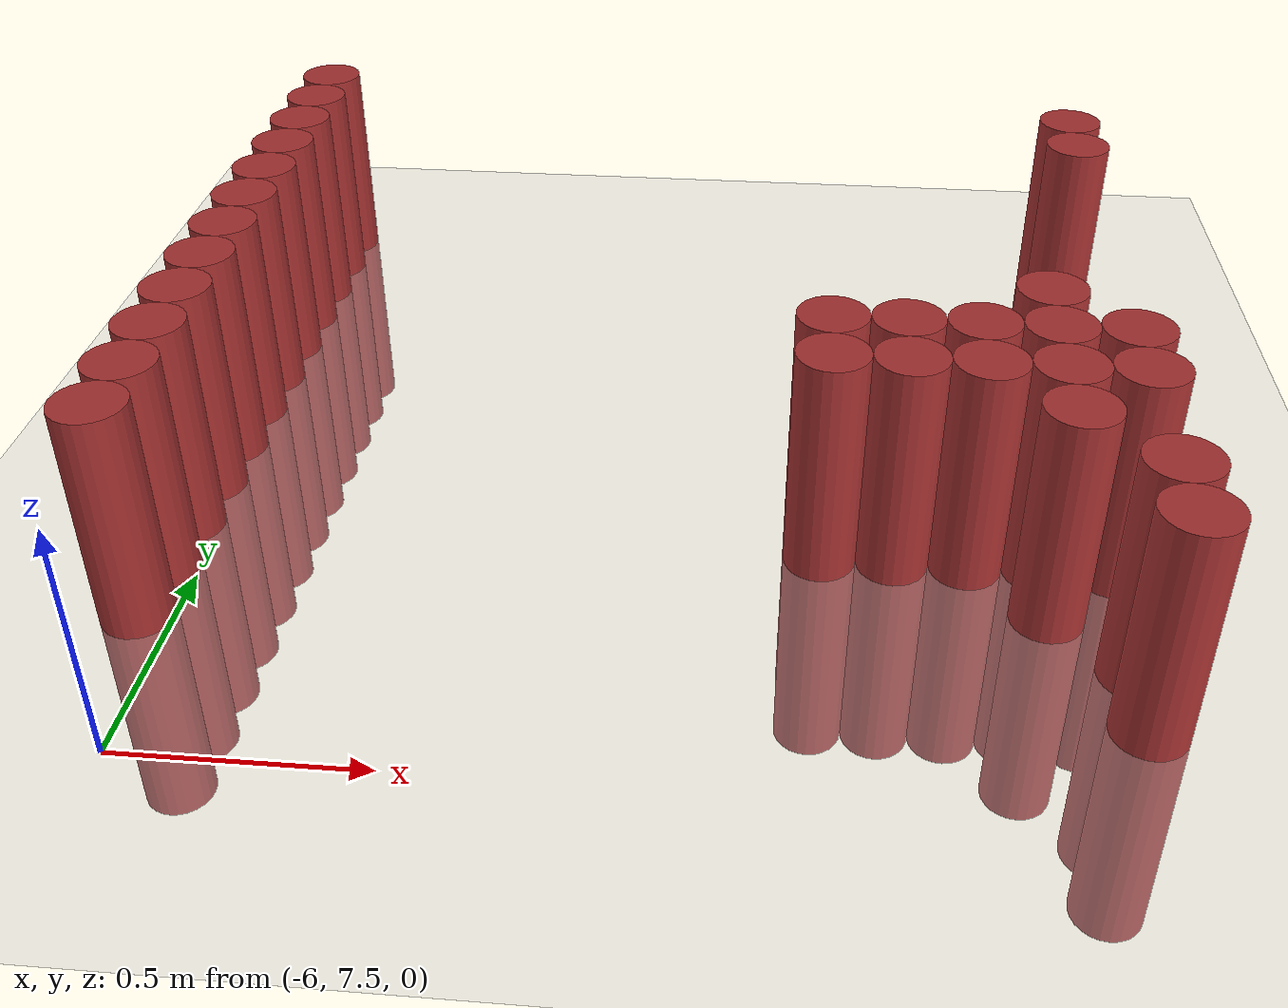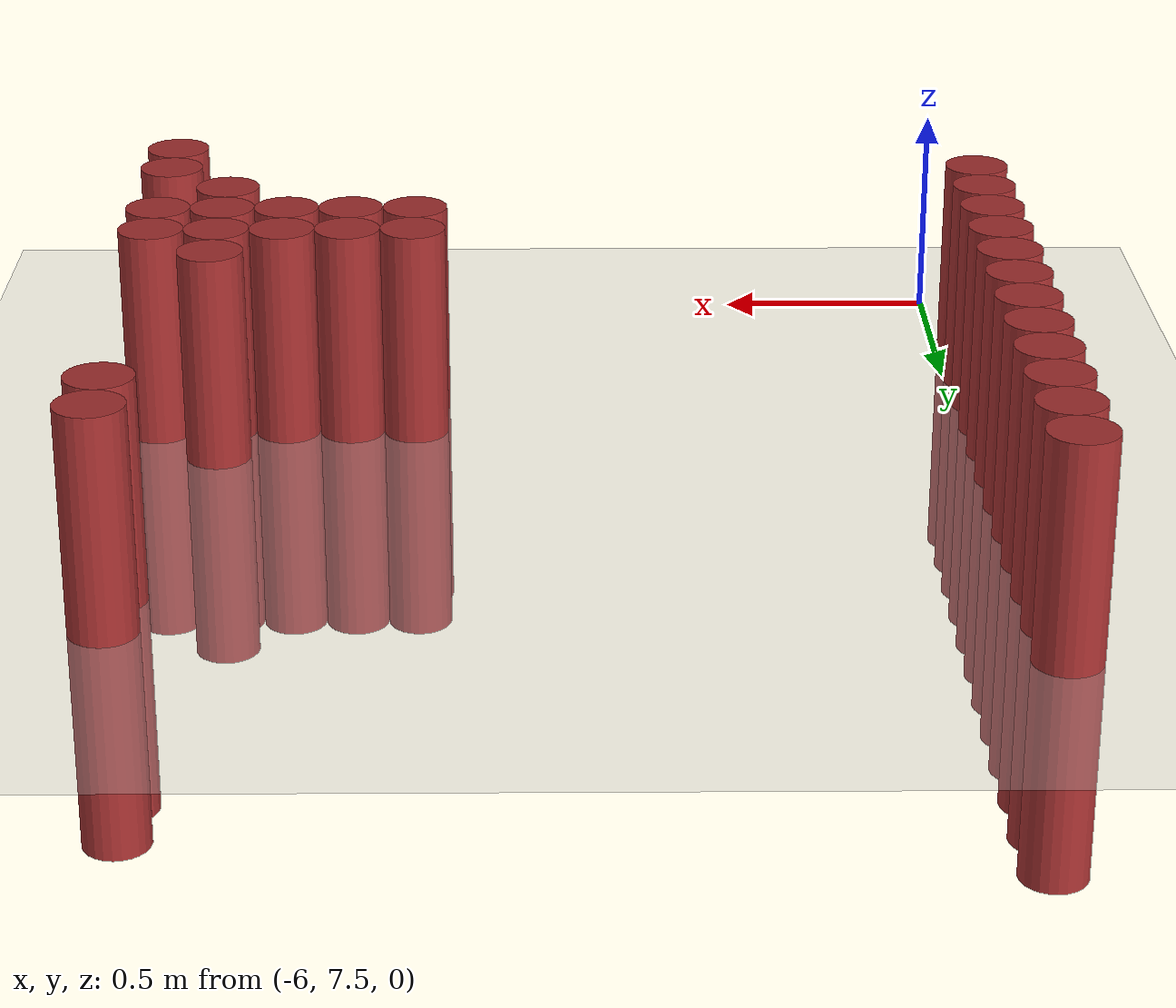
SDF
<sdf version="1.6">
 <world name="default">
  <model name="ground_plane">
   <static>1</static>
   <link name="link">
    <collision name="collision">
     <geometry><plane><normal>0 0 1</normal><size>100 100</size></plane></geometry>
     <surface><friction><ode><mu>100</mu><mu2>50</mu2></ode></friction></surface>
    </collision>
    <visual name="visual">
     <cast_shadows>0</cast_shadows>
     <geometry><plane><normal>0 0 1</normal><size>100 100</size></plane></geometry>
     <material>
      <script><uri>file://media/materials/scripts/gazebo.material</uri><name>Gazebo/Grey</name></script>
     </material>
    </visual>
   </link>
  </model>
  <model name="unit_cylinder_199">
   <static>1</static>
   <pose>-6.075000 7.875000 0.000000 0.000000 0.000000 0.000000</pose>
   <link name="link">
    <inertial>
     <mass>1</mass>
     <inertia><ixx>0.145833</ixx><ixy>0</ixy><ixz>0</ixz><iyy>0.145833</iyy><iyz>0</iyz><izz>0.125</izz></inertia>
    </inertial>
    <collision name="collision">
     <geometry><cylinder><radius>0.075000</radius><length>1</length></cylinder></geometry>
    </collision>
    <visual name="visual">
     <geometry><cylinder><radius>0.075000</radius><length>1</length></cylinder></geometry>
     <material>
      <ambient>0.648000 0.192000 0.192000 1</ambient>
      <diffuse>0.648000 0.192000 0.192000 1</diffuse>
     </material>
     <material>
      <script><name>Gazebo/Grey</name><uri>file://media/materials/scripts/gazebo.material</uri></script>
     </material>
    </visual>
   </link>
  </model>
  <model name="unit_cylinder_200">
   <static>1</static>
   <pose>-6.075000 8.025000 0.000000 0.000000 0.000000 0.000000</pose>
   <link name="link">
    <inertial>
     <mass>1</mass>
     <inertia><ixx>0.145833</ixx><ixy>0</ixy><ixz>0</ixz><iyy>0.145833</iyy><iyz>0</iyz><izz>0.125</izz></inertia>
    </inertial>
    <collision name="collision">
     <geometry><cylinder><radius>0.075000</radius><length>1</length></cylinder></geometry>
    </collision>
    <visual name="visual">
     <geometry><cylinder><radius>0.075000</radius><length>1</length></cylinder></geometry>
     <material>
      <ambient>0.648000 0.192000 0.192000 1</ambient>
      <diffuse>0.648000 0.192000 0.192000 1</diffuse>
     </material>
     <material>
      <script><name>Gazebo/Grey</name><uri>file://media/materials/scripts/gazebo.material</uri></script>
     </material>
    </visual>
   </link>
  </model>
  <model name="unit_cylinder_201">
   <static>1</static>
   <pose>-6.075000 8.175000 0.000000 0.000000 0.000000 0.000000</pose>
   <link name="link">
    <inertial>
     <mass>1</mass>
     <inertia><ixx>0.145833</ixx><ixy>0</ixy><ixz>0</ixz><iyy>0.145833</iyy><iyz>0</iyz><izz>0.125</izz></inertia>
    </inertial>
    <collision name="collision">
     <geometry><cylinder><radius>0.075000</radius><length>1</length></cylinder></geometry>
    </collision>
    <visual name="visual">
     <geometry><cylinder><radius>0.075000</radius><length>1</length></cylinder></geometry>
     <material>
      <ambient>0.648000 0.192000 0.192000 1</ambient>
      <diffuse>0.648000 0.192000 0.192000 1</diffuse>
     </material>
     <material>
      <script><name>Gazebo/Grey</name><uri>file://media/materials/scripts/gazebo.material</uri></script>
     </material>
    </visual>
   </link>
  </model>
  <model name="unit_cylinder_202">
   <static>1</static>
   <pose>-6.075000 8.325000 0.000000 0.000000 0.000000 0.000000</pose>
   <link name="link">
    <inertial>
     <mass>1</mass>
     <inertia><ixx>0.145833</ixx><ixy>0</ixy><ixz>0</ixz><iyy>0.145833</iyy><iyz>0</iyz><izz>0.125</izz></inertia>
    </inertial>
    <collision name="collision">
     <geometry><cylinder><radius>0.075000</radius><length>1</length></cylinder></geometry>
    </collision>
    <visual name="visual">
     <geometry><cylinder><radius>0.075000</radius><length>1</length></cylinder></geometry>
     <material>
      <ambient>0.648000 0.192000 0.192000 1</ambient>
      <diffuse>0.648000 0.192000 0.192000 1</diffuse>
     </material>
     <material>
      <script><name>Gazebo/Grey</name><uri>file://media/materials/scripts/gazebo.material</uri></script>
     </material>
    </visual>
   </link>
  </model>
  <model name="unit_cylinder_203">
   <static>1</static>
   <pose>-6.075000 8.475000 0.000000 0.000000 0.000000 0.000000</pose>
   <link name="link">
    <inertial>
     <mass>1</mass>
     <inertia><ixx>0.145833</ixx><ixy>0</ixy><ixz>0</ixz><iyy>0.145833</iyy><iyz>0</iyz><izz>0.125</izz></inertia>
    </inertial>
    <collision name="collision">
     <geometry><cylinder><radius>0.075000</radius><length>1</length></cylinder></geometry>
    </collision>
    <visual name="visual">
     <geometry><cylinder><radius>0.075000</radius><length>1</length></cylinder></geometry>
     <material>
      <ambient>0.648000 0.192000 0.192000 1</ambient>
      <diffuse>0.648000 0.192000 0.192000 1</diffuse>
     </material>
     <material>
      <script><name>Gazebo/Grey</name><uri>file://media/materials/scripts/gazebo.material</uri></script>
     </material>
    </visual>
   </link>
  </model>
  <model name="unit_cylinder_204">
   <static>1</static>
   <pose>-6.075000 8.625000 0.000000 0.000000 0.000000 0.000000</pose>
   <link name="link">
    <inertial>
     <mass>1</mass>
     <inertia><ixx>0.145833</ixx><ixy>0</ixy><ixz>0</ixz><iyy>0.145833</iyy><iyz>0</iyz><izz>0.125</izz></inertia>
    </inertial>
    <collision name="collision">
     <geometry><cylinder><radius>0.075000</radius><length>1</length></cylinder></geometry>
    </collision>
    <visual name="visual">
     <geometry><cylinder><radius>0.075000</radius><length>1</length></cylinder></geometry>
     <material>
      <ambient>0.648000 0.192000 0.192000 1</ambient>
      <diffuse>0.648000 0.192000 0.192000 1</diffuse>
     </material>
     <material>
      <script><name>Gazebo/Grey</name><uri>file://media/materials/scripts/gazebo.material</uri></script>
     </material>
    </visual>
   </link>
  </model>
  <model name="unit_cylinder_205">
   <static>1</static>
   <pose>-6.075000 8.775000 0.000000 0.000000 0.000000 0.000000</pose>
   <link name="link">
    <inertial>
     <mass>1</mass>
     <inertia><ixx>0.145833</ixx><ixy>0</ixy><ixz>0</ixz><iyy>0.145833</iyy><iyz>0</iyz><izz>0.125</izz></inertia>
    </inertial>
    <collision name="collision">
     <geometry><cylinder><radius>0.075000</radius><length>1</length></cylinder></geometry>
    </collision>
    <visual name="visual">
     <geometry><cylinder><radius>0.075000</radius><length>1</length></cylinder></geometry>
     <material>
      <ambient>0.648000 0.192000 0.192000 1</ambient>
      <diffuse>0.648000 0.192000 0.192000 1</diffuse>
     </material>
     <material>
      <script><name>Gazebo/Grey</name><uri>file://media/materials/scripts/gazebo.material</uri></script>
     </material>
    </visual>
   </link>
  </model>
  <model name="unit_cylinder_206">
   <static>1</static>
   <pose>-6.075000 8.925000 0.000000 0.000000 0.000000 0.000000</pose>
   <link name="link">
    <inertial>
     <mass>1</mass>
     <inertia><ixx>0.145833</ixx><ixy>0</ixy><ixz>0</ixz><iyy>0.145833</iyy><iyz>0</iyz><izz>0.125</izz></inertia>
    </inertial>
    <collision name="collision">
     <geometry><cylinder><radius>0.075000</radius><length>1</length></cylinder></geometry>
    </collision>
    <visual name="visual">
     <geometry><cylinder><radius>0.075000</radius><length>1</length></cylinder></geometry>
     <material>
      <ambient>0.648000 0.192000 0.192000 1</ambient>
      <diffuse>0.648000 0.192000 0.192000 1</diffuse>
     </material>
     <material>
      <script><name>Gazebo/Grey</name><uri>file://media/materials/scripts/gazebo.material</uri></script>
     </material>
    </visual>
   </link>
  </model>
  <model name="unit_cylinder_207">
   <static>1</static>
   <pose>-6.075000 9.075000 0.000000 0.000000 0.000000 0.000000</pose>
   <link name="link">
    <inertial>
     <mass>1</mass>
     <inertia><ixx>0.145833</ixx><ixy>0</ixy><ixz>0</ixz><iyy>0.145833</iyy><iyz>0</iyz><izz>0.125</izz></inertia>
    </inertial>
    <collision name="collision">
     <geometry><cylinder><radius>0.075000</radius><length>1</length></cylinder></geometry>
    </collision>
    <visual name="visual">
     <geometry><cylinder><radius>0.075000</radius><length>1</length></cylinder></geometry>
     <material>
      <ambient>0.648000 0.192000 0.192000 1</ambient>
      <diffuse>0.648000 0.192000 0.192000 1</diffuse>
     </material>
     <material>
      <script><name>Gazebo/Grey</name><uri>file://media/materials/scripts/gazebo.material</uri></script>
     </material>
    </visual>
   </link>
  </model>
  <model name="unit_cylinder_208">
   <static>1</static>
   <pose>-6.075000 9.225000 0.000000 0.000000 0.000000 0.000000</pose>
   <link name="link">
    <inertial>
     <mass>1</mass>
     <inertia><ixx>0.145833</ixx><ixy>0</ixy><ixz>0</ixz><iyy>0.145833</iyy><iyz>0</iyz><izz>0.125</izz></inertia>
    </inertial>
    <collision name="collision">
     <geometry><cylinder><radius>0.075000</radius><length>1</length></cylinder></geometry>
    </collision>
    <visual name="visual">
     <geometry><cylinder><radius>0.075000</radius><length>1</length></cylinder></geometry>
     <material>
      <ambient>0.648000 0.192000 0.192000 1</ambient>
      <diffuse>0.648000 0.192000 0.192000 1</diffuse>
     </material>
     <material>
      <script><name>Gazebo/Grey</name><uri>file://media/materials/scripts/gazebo.material</uri></script>
     </material>
    </visual>
   </link>
  </model>
  <model name="unit_cylinder_209">
   <static>1</static>
   <pose>-6.075000 9.375000 0.000000 0.000000 0.000000 0.000000</pose>
   <link name="link">
    <inertial>
     <mass>1</mass>
     <inertia><ixx>0.145833</ixx><ixy>0</ixy><ixz>0</ixz><iyy>0.145833</iyy><iyz>0</iyz><izz>0.125</izz></inertia>
    </inertial>
    <collision name="collision">
     <geometry><cylinder><radius>0.075000</radius><length>1</length></cylinder></geometry>
    </collision>
    <visual name="visual">
     <geometry><cylinder><radius>0.075000</radius><length>1</length></cylinder></geometry>
     <material>
      <ambient>0.648000 0.192000 0.192000 1</ambient>
      <diffuse>0.648000 0.192000 0.192000 1</diffuse>
     </material>
     <material>
      <script><name>Gazebo/Grey</name><uri>file://media/materials/scripts/gazebo.material</uri></script>
     </material>
    </visual>
   </link>
  </model>
  <model name="unit_cylinder_210">
   <static>1</static>
   <pose>-6.075000 9.525000 0.000000 0.000000 0.000000 0.000000</pose>
   <link name="link">
    <inertial>
     <mass>1</mass>
     <inertia><ixx>0.145833</ixx><ixy>0</ixy><ixz>0</ixz><iyy>0.145833</iyy><iyz>0</iyz><izz>0.125</izz></inertia>
    </inertial>
    <collision name="collision">
     <geometry><cylinder><radius>0.075000</radius><length>1</length></cylinder></geometry>
    </collision>
    <visual name="visual">
     <geometry><cylinder><radius>0.075000</radius><length>1</length></cylinder></geometry>
     <material>
      <ambient>0.648000 0.192000 0.192000 1</ambient>
      <diffuse>0.648000 0.192000 0.192000 1</diffuse>
     </material>
     <material>
      <script><name>Gazebo/Grey</name><uri>file://media/materials/scripts/gazebo.material</uri></script>
     </material>
    </visual>
   </link>
  </model>
  <model name="unit_cylinder_230">
   <static>1</static>
   <pose>-4.725000 8.175000 0.000000 0.000000 0.000000 0.000000</pose>
   <link name="link">
    <inertial>
     <mass>1</mass>
     <inertia><ixx>0.145833</ixx><ixy>0</ixy><ixz>0</ixz><iyy>0.145833</iyy><iyz>0</iyz><izz>0.125</izz></inertia>
    </inertial>
    <collision name="collision">
     <geometry><cylinder><radius>0.075000</radius><length>1</length></cylinder></geometry>
    </collision>
    <visual name="visual">
     <geometry><cylinder><radius>0.075000</radius><length>1</length></cylinder></geometry>
     <material>
      <ambient>0.648000 0.192000 0.192000 1</ambient>
      <diffuse>0.648000 0.192000 0.192000 1</diffuse>
     </material>
     <material>
      <script><name>Gazebo/Grey</name><uri>file://media/materials/scripts/gazebo.material</uri></script>
     </material>
    </visual>
   </link>
  </model>
  <model name="unit_cylinder_231">
   <static>1</static>
   <pose>-4.725000 8.325000 0.000000 0.000000 0.000000 0.000000</pose>
   <link name="link">
    <inertial>
     <mass>1</mass>
     <inertia><ixx>0.145833</ixx><ixy>0</ixy><ixz>0</ixz><iyy>0.145833</iyy><iyz>0</iyz><izz>0.125</izz></inertia>
    </inertial>
    <collision name="collision">
     <geometry><cylinder><radius>0.075000</radius><length>1</length></cylinder></geometry>
    </collision>
    <visual name="visual">
     <geometry><cylinder><radius>0.075000</radius><length>1</length></cylinder></geometry>
     <material>
      <ambient>0.648000 0.192000 0.192000 1</ambient>
      <diffuse>0.648000 0.192000 0.192000 1</diffuse>
     </material>
     <material>
      <script><name>Gazebo/Grey</name><uri>file://media/materials/scripts/gazebo.material</uri></script>
     </material>
    </visual>
   </link>
  </model>
  <model name="unit_cylinder_232">
   <static>1</static>
   <pose>-4.575000 8.175000 0.000000 0.000000 0.000000 0.000000</pose>
   <link name="link">
    <inertial>
     <mass>1</mass>
     <inertia><ixx>0.145833</ixx><ixy>0</ixy><ixz>0</ixz><iyy>0.145833</iyy><iyz>0</iyz><izz>0.125</izz></inertia>
    </inertial>
    <collision name="collision">
     <geometry><cylinder><radius>0.075000</radius><length>1</length></cylinder></geometry>
    </collision>
    <visual name="visual">
     <geometry><cylinder><radius>0.075000</radius><length>1</length></cylinder></geometry>
     <material>
      <ambient>0.648000 0.192000 0.192000 1</ambient>
      <diffuse>0.648000 0.192000 0.192000 1</diffuse>
     </material>
     <material>
      <script><name>Gazebo/Grey</name><uri>file://media/materials/scripts/gazebo.material</uri></script>
     </material>
    </visual>
   </link>
  </model>
  <model name="unit_cylinder_233">
   <static>1</static>
   <pose>-4.575000 8.325000 0.000000 0.000000 0.000000 0.000000</pose>
   <link name="link">
    <inertial>
     <mass>1</mass>
     <inertia><ixx>0.145833</ixx><ixy>0</ixy><ixz>0</ixz><iyy>0.145833</iyy><iyz>0</iyz><izz>0.125</izz></inertia>
    </inertial>
    <collision name="collision">
     <geometry><cylinder><radius>0.075000</radius><length>1</length></cylinder></geometry>
    </collision>
    <visual name="visual">
     <geometry><cylinder><radius>0.075000</radius><length>1</length></cylinder></geometry>
     <material>
      <ambient>0.648000 0.192000 0.192000 1</ambient>
      <diffuse>0.648000 0.192000 0.192000 1</diffuse>
     </material>
     <material>
      <script><name>Gazebo/Grey</name><uri>file://media/materials/scripts/gazebo.material</uri></script>
     </material>
    </visual>
   </link>
  </model>
  <model name="unit_cylinder_236">
   <static>1</static>
   <pose>-4.425000 8.175000 0.000000 0.000000 0.000000 0.000000</pose>
   <link name="link">
    <inertial>
     <mass>1</mass>
     <inertia><ixx>0.145833</ixx><ixy>0</ixy><ixz>0</ixz><iyy>0.145833</iyy><iyz>0</iyz><izz>0.125</izz></inertia>
    </inertial>
    <collision name="collision">
     <geometry><cylinder><radius>0.075000</radius><length>1</length></cylinder></geometry>
    </collision>
    <visual name="visual">
     <geometry><cylinder><radius>0.075000</radius><length>1</length></cylinder></geometry>
     <material>
      <ambient>0.648000 0.192000 0.192000 1</ambient>
      <diffuse>0.648000 0.192000 0.192000 1</diffuse>
     </material>
     <material>
      <script><name>Gazebo/Grey</name><uri>file://media/materials/scripts/gazebo.material</uri></script>
     </material>
    </visual>
   </link>
  </model>
  <model name="unit_cylinder_237">
   <static>1</static>
   <pose>-4.425000 8.325000 0.000000 0.000000 0.000000 0.000000</pose>
   <link name="link">
    <inertial>
     <mass>1</mass>
     <inertia><ixx>0.145833</ixx><ixy>0</ixy><ixz>0</ixz><iyy>0.145833</iyy><iyz>0</iyz><izz>0.125</izz></inertia>
    </inertial>
    <collision name="collision">
     <geometry><cylinder><radius>0.075000</radius><length>1</length></cylinder></geometry>
    </collision>
    <visual name="visual">
     <geometry><cylinder><radius>0.075000</radius><length>1</length></cylinder></geometry>
     <material>
      <ambient>0.648000 0.192000 0.192000 1</ambient>
      <diffuse>0.648000 0.192000 0.192000 1</diffuse>
     </material>
     <material>
      <script><name>Gazebo/Grey</name><uri>file://media/materials/scripts/gazebo.material</uri></script>
     </material>
    </visual>
   </link>
  </model>
  <model name="unit_cylinder_240">
   <static>1</static>
   <pose>-4.275000 8.025000 0.000000 0.000000 0.000000 0.000000</pose>
   <link name="link">
    <inertial>
     <mass>1</mass>
     <inertia><ixx>0.145833</ixx><ixy>0</ixy><ixz>0</ixz><iyy>0.145833</iyy><iyz>0</iyz><izz>0.125</izz></inertia>
    </inertial>
    <collision name="collision">
     <geometry><cylinder><radius>0.075000</radius><length>1</length></cylinder></geometry>
    </collision>
    <visual name="visual">
     <geometry><cylinder><radius>0.075000</radius><length>1</length></cylinder></geometry>
     <material>
      <ambient>0.648000 0.192000 0.192000 1</ambient>
      <diffuse>0.648000 0.192000 0.192000 1</diffuse>
     </material>
     <material>
      <script><name>Gazebo/Grey</name><uri>file://media/materials/scripts/gazebo.material</uri></script>
     </material>
    </visual>
   </link>
  </model>
  <model name="unit_cylinder_241">
   <static>1</static>
   <pose>-4.275000 8.175000 0.000000 0.000000 0.000000 0.000000</pose>
   <link name="link">
    <inertial>
     <mass>1</mass>
     <inertia><ixx>0.145833</ixx><ixy>0</ixy><ixz>0</ixz><iyy>0.145833</iyy><iyz>0</iyz><izz>0.125</izz></inertia>
    </inertial>
    <collision name="collision">
     <geometry><cylinder><radius>0.075000</radius><length>1</length></cylinder></geometry>
    </collision>
    <visual name="visual">
     <geometry><cylinder><radius>0.075000</radius><length>1</length></cylinder></geometry>
     <material>
      <ambient>0.648000 0.192000 0.192000 1</ambient>
      <diffuse>0.648000 0.192000 0.192000 1</diffuse>
     </material>
     <material>
      <script><name>Gazebo/Grey</name><uri>file://media/materials/scripts/gazebo.material</uri></script>
     </material>
    </visual>
   </link>
  </model>
  <model name="unit_cylinder_242">
   <static>1</static>
   <pose>-4.275000 8.325000 0.000000 0.000000 0.000000 0.000000</pose>
   <link name="link">
    <inertial>
     <mass>1</mass>
     <inertia><ixx>0.145833</ixx><ixy>0</ixy><ixz>0</ixz><iyy>0.145833</iyy><iyz>0</iyz><izz>0.125</izz></inertia>
    </inertial>
    <collision name="collision">
     <geometry><cylinder><radius>0.075000</radius><length>1</length></cylinder></geometry>
    </collision>
    <visual name="visual">
     <geometry><cylinder><radius>0.075000</radius><length>1</length></cylinder></geometry>
     <material>
      <ambient>0.648000 0.192000 0.192000 1</ambient>
      <diffuse>0.648000 0.192000 0.192000 1</diffuse>
     </material>
     <material>
      <script><name>Gazebo/Grey</name><uri>file://media/materials/scripts/gazebo.material</uri></script>
     </material>
    </visual>
   </link>
  </model>
  <model name="unit_cylinder_243">
   <static>1</static>
   <pose>-4.275000 8.475000 0.000000 0.000000 0.000000 0.000000</pose>
   <link name="link">
    <inertial>
     <mass>1</mass>
     <inertia><ixx>0.145833</ixx><ixy>0</ixy><ixz>0</ixz><iyy>0.145833</iyy><iyz>0</iyz><izz>0.125</izz></inertia>
    </inertial>
    <collision name="collision">
     <geometry><cylinder><radius>0.075000</radius><length>1</length></cylinder></geometry>
    </collision>
    <visual name="visual">
     <geometry><cylinder><radius>0.075000</radius><length>1</length></cylinder></geometry>
     <material>
      <ambient>0.648000 0.192000 0.192000 1</ambient>
      <diffuse>0.648000 0.192000 0.192000 1</diffuse>
     </material>
     <material>
      <script><name>Gazebo/Grey</name><uri>file://media/materials/scripts/gazebo.material</uri></script>
     </material>
    </visual>
   </link>
  </model>
  <model name="unit_cylinder_250">
   <static>1</static>
   <pose>-4.125000 7.725000 0.000000 0.000000 0.000000 0.000000</pose>
   <link name="link">
    <inertial>
     <mass>1</mass>
     <inertia><ixx>0.145833</ixx><ixy>0</ixy><ixz>0</ixz><iyy>0.145833</iyy><iyz>0</iyz><izz>0.125</izz></inertia>
    </inertial>
    <collision name="collision">
     <geometry><cylinder><radius>0.075000</radius><length>1</length></cylinder></geometry>
    </collision>
    <visual name="visual">
     <geometry><cylinder><radius>0.075000</radius><length>1</length></cylinder></geometry>
     <material>
      <ambient>0.648000 0.192000 0.192000 1</ambient>
      <diffuse>0.648000 0.192000 0.192000 1</diffuse>
     </material>
     <material>
      <script><name>Gazebo/Grey</name><uri>file://media/materials/scripts/gazebo.material</uri></script>
     </material>
    </visual>
   </link>
  </model>
  <model name="unit_cylinder_251">
   <static>1</static>
   <pose>-4.125000 7.875000 0.000000 0.000000 0.000000 0.000000</pose>
   <link name="link">
    <inertial>
     <mass>1</mass>
     <inertia><ixx>0.145833</ixx><ixy>0</ixy><ixz>0</ixz><iyy>0.145833</iyy><iyz>0</iyz><izz>0.125</izz></inertia>
    </inertial>
    <collision name="collision">
     <geometry><cylinder><radius>0.075000</radius><length>1</length></cylinder></geometry>
    </collision>
    <visual name="visual">
     <geometry><cylinder><radius>0.075000</radius><length>1</length></cylinder></geometry>
     <material>
      <ambient>0.648000 0.192000 0.192000 1</ambient>
      <diffuse>0.648000 0.192000 0.192000 1</diffuse>
     </material>
     <material>
      <script><name>Gazebo/Grey</name><uri>file://media/materials/scripts/gazebo.material</uri></script>
     </material>
    </visual>
   </link>
  </model>
  <model name="unit_cylinder_252">
   <static>1</static>
   <pose>-4.125000 8.175000 0.000000 0.000000 0.000000 0.000000</pose>
   <link name="link">
    <inertial>
     <mass>1</mass>
     <inertia><ixx>0.145833</ixx><ixy>0</ixy><ixz>0</ixz><iyy>0.145833</iyy><iyz>0</iyz><izz>0.125</izz></inertia>
    </inertial>
    <collision name="collision">
     <geometry><cylinder><radius>0.075000</radius><length>1</length></cylinder></geometry>
    </collision>
    <visual name="visual">
     <geometry><cylinder><radius>0.075000</radius><length>1</length></cylinder></geometry>
     <material>
      <ambient>0.648000 0.192000 0.192000 1</ambient>
      <diffuse>0.648000 0.192000 0.192000 1</diffuse>
     </material>
     <material>
      <script><name>Gazebo/Grey</name><uri>file://media/materials/scripts/gazebo.material</uri></script>
     </material>
    </visual>
   </link>
  </model>
  <model name="unit_cylinder_253">
   <static>1</static>
   <pose>-4.125000 8.325000 0.000000 0.000000 0.000000 0.000000</pose>
   <link name="link">
    <inertial>
     <mass>1</mass>
     <inertia><ixx>0.145833</ixx><ixy>0</ixy><ixz>0</ixz><iyy>0.145833</iyy><iyz>0</iyz><izz>0.125</izz></inertia>
    </inertial>
    <collision name="collision">
     <geometry><cylinder><radius>0.075000</radius><length>1</length></cylinder></geometry>
    </collision>
    <visual name="visual">
     <geometry><cylinder><radius>0.075000</radius><length>1</length></cylinder></geometry>
     <material>
      <ambient>0.648000 0.192000 0.192000 1</ambient>
      <diffuse>0.648000 0.192000 0.192000 1</diffuse>
     </material>
     <material>
      <script><name>Gazebo/Grey</name><uri>file://media/materials/scripts/gazebo.material</uri></script>
     </material>
    </visual>
   </link>
  </model>
  <model name="unit_cylinder_254">
   <static>1</static>
   <pose>-4.125000 9.225000 0.000000 0.000000 0.000000 0.000000</pose>
   <link name="link">
    <inertial>
     <mass>1</mass>
     <inertia><ixx>0.145833</ixx><ixy>0</ixy><ixz>0</ixz><iyy>0.145833</iyy><iyz>0</iyz><izz>0.125</izz></inertia>
    </inertial>
    <collision name="collision">
     <geometry><cylinder><radius>0.075000</radius><length>1</length></cylinder></geometry>
    </collision>
    <visual name="visual">
     <geometry><cylinder><radius>0.075000</radius><length>1</length></cylinder></geometry>
     <material>
      <ambient>0.648000 0.192000 0.192000 1</ambient>
      <diffuse>0.648000 0.192000 0.192000 1</diffuse>
     </material>
     <material>
      <script><name>Gazebo/Grey</name><uri>file://media/materials/scripts/gazebo.material</uri></script>
     </material>
    </visual>
   </link>
  </model>
  <model name="unit_cylinder_255">
   <static>1</static>
   <pose>-4.125000 9.375000 0.000000 0.000000 0.000000 0.000000</pose>
   <link name="link">
    <inertial>
     <mass>1</mass>
     <inertia><ixx>0.145833</ixx><ixy>0</ixy><ixz>0</ixz><iyy>0.145833</iyy><iyz>0</iyz><izz>0.125</izz></inertia>
    </inertial>
    <collision name="collision">
     <geometry><cylinder><radius>0.075000</radius><length>1</length></cylinder></geometry>
    </collision>
    <visual name="visual">
     <geometry><cylinder><radius>0.075000</radius><length>1</length></cylinder></geometry>
     <material>
      <ambient>0.648000 0.192000 0.192000 1</ambient>
      <diffuse>0.648000 0.192000 0.192000 1</diffuse>
     </material>
     <material>
      <script><name>Gazebo/Grey</name><uri>file://media/materials/scripts/gazebo.material</uri></script>
     </material>
    </visual>
   </link>
  </model>
 </world>
</sdf>
